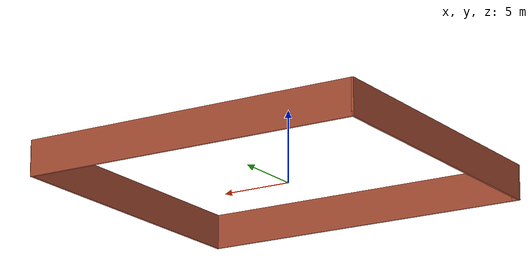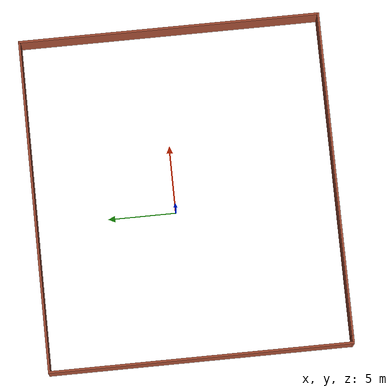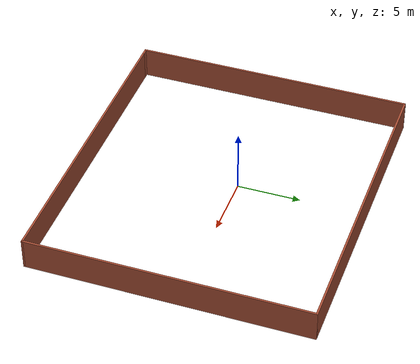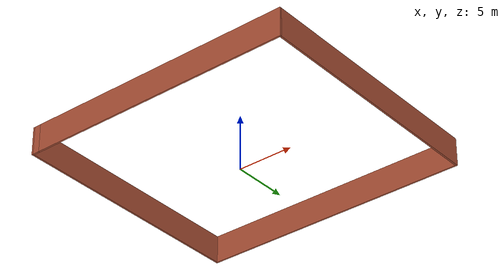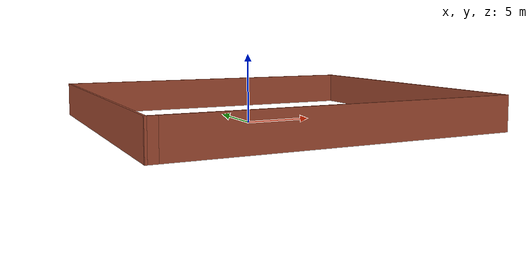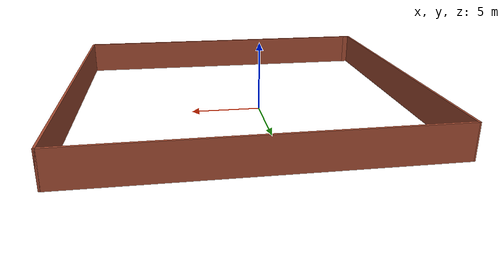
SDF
<?xml version='1.0'?>
<sdf version='1.7'>
  <model name='teleop_enclosure'>
    <pose>1.20877 -0.793589 0 0 -0 0</pose>
    <link name='Wall_0'>
      <collision name='Wall_0_Collision'>
        <geometry>
          <box>
            <size>24.5 0.15 2.5</size>
          </box>
        </geometry>
        <pose>0 0 1.25 0 -0 0</pose>
      </collision>
      <visual name='Wall_0_Visual'>
        <pose>0 0 1.25 0 -0 0</pose>
        <geometry>
          <box>
            <size>24.5 0.15 2.5</size>
          </box>
        </geometry>
        <material>
          <script>
            <uri>file://media/materials/scripts/gazebo.material</uri>
            <name>Gazebo/Bricks</name>
          </script>
          <ambient>1 1 1 1</ambient>
        </material>
        <meta>
          <layer>0</layer>
        </meta>
      </visual>
      <pose>0.05 11.05 0 0 -0 0</pose>
    </link>
    <link name='Wall_2'>
      <collision name='Wall_2_Collision'>
        <geometry>
          <box>
            <size>22.25 0.15 2.5</size>
          </box>
        </geometry>
        <pose>0 0 1.25 0 -0 0</pose>
      </collision>
      <visual name='Wall_2_Visual'>
        <pose>0 0 1.25 0 -0 0</pose>
        <geometry>
          <box>
            <size>22.25 0.15 2.5</size>
          </box>
        </geometry>
        <material>
          <script>
            <uri>file://media/materials/scripts/gazebo.material</uri>
            <name>Gazebo/Bricks</name>
          </script>
          <ambient>1 1 1 1</ambient>
        </material>
        <meta>
          <layer>0</layer>
        </meta>
      </visual>
      <pose>12.225 -0 0 0 -0 -1.5708</pose>
    </link>
    <link name='Wall_3'>
      <collision name='Wall_3_Collision'>
        <geometry>
          <box>
            <size>24 0.15 2.5</size>
          </box>
        </geometry>
        <pose>0 0 1.25 0 -0 0</pose>
      </collision>
      <visual name='Wall_3_Visual'>
        <pose>0 0 1.25 0 -0 0</pose>
        <geometry>
          <box>
            <size>24 0.15 2.5</size>
          </box>
        </geometry>
        <material>
          <script>
            <uri>file://media/materials/scripts/gazebo.material</uri>
            <name>Gazebo/Bricks</name>
          </script>
          <ambient>1 1 1 1</ambient>
        </material>
        <meta>
          <layer>0</layer>
        </meta>
      </visual>
      <pose>0.3 -11.05 0 0 -0 3.14159</pose>
    </link>
    <link name='Wall_5'>
      <collision name='Wall_5_Collision'>
        <geometry>
          <box>
            <size>0.75 0.15 2.5</size>
          </box>
        </geometry>
        <pose>0 0 1.25 0 -0 0</pose>
      </collision>
      <visual name='Wall_5_Visual'>
        <pose>0 0 1.25 0 -0 0</pose>
        <geometry>
          <box>
            <size>0.75 0.15 2.5</size>
          </box>
        </geometry>
        <material>
          <script>
            <uri>file://media/materials/scripts/gazebo.material</uri>
            <name>Gazebo/Bricks</name>
          </script>
          <ambient>1 1 1 1</ambient>
        </material>
        <meta>
          <layer>0</layer>
        </meta>
      </visual>
      <pose>-11.925 -11.05 0 0 -0 3.14159</pose>
    </link>
    <link name='Wall_6'>
      <collision name='Wall_6_Collision'>
        <geometry>
          <box>
            <size>22.25 0.15 2.5</size>
          </box>
        </geometry>
        <pose>0 0 1.25 0 -0 0</pose>
      </collision>
      <visual name='Wall_6_Visual'>
        <pose>0 0 1.25 0 -0 0</pose>
        <geometry>
          <box>
            <size>22.25 0.15 2.5</size>
          </box>
        </geometry>
        <material>
          <script>
            <uri>file://media/materials/scripts/gazebo.material</uri>
            <name>Gazebo/Bricks</name>
          </script>
          <ambient>1 1 1 1</ambient>
        </material>
        <meta>
          <layer>0</layer>
        </meta>
      </visual>
      <pose>-12.225 -0 0 0 -0 1.5708</pose>
    </link>
    <static>1</static>
  </model>
</sdf>
